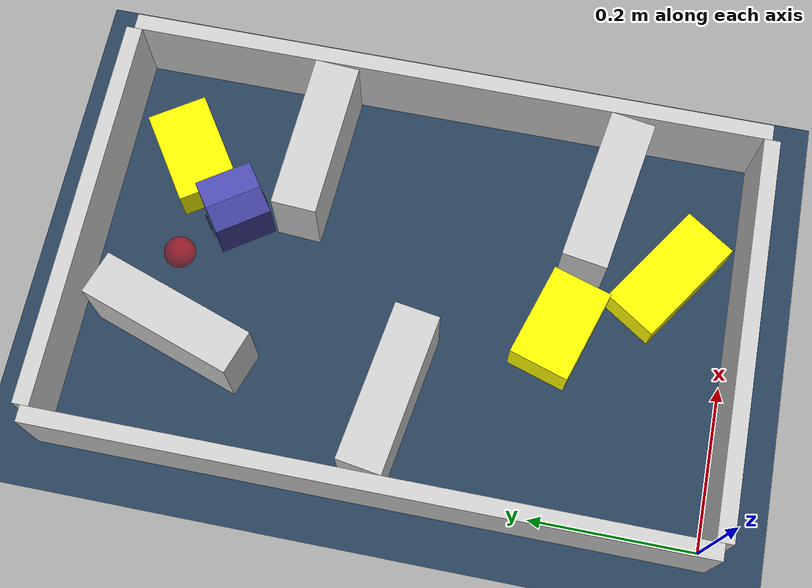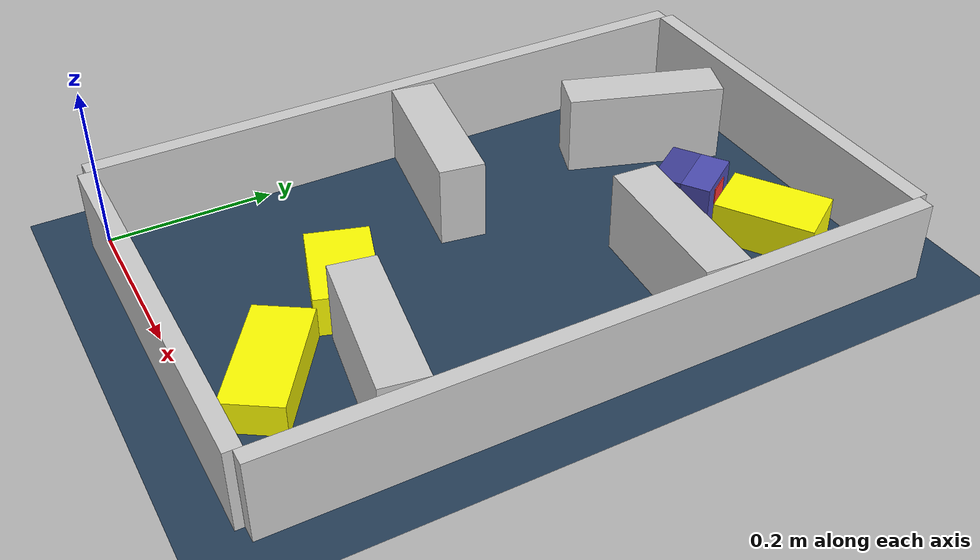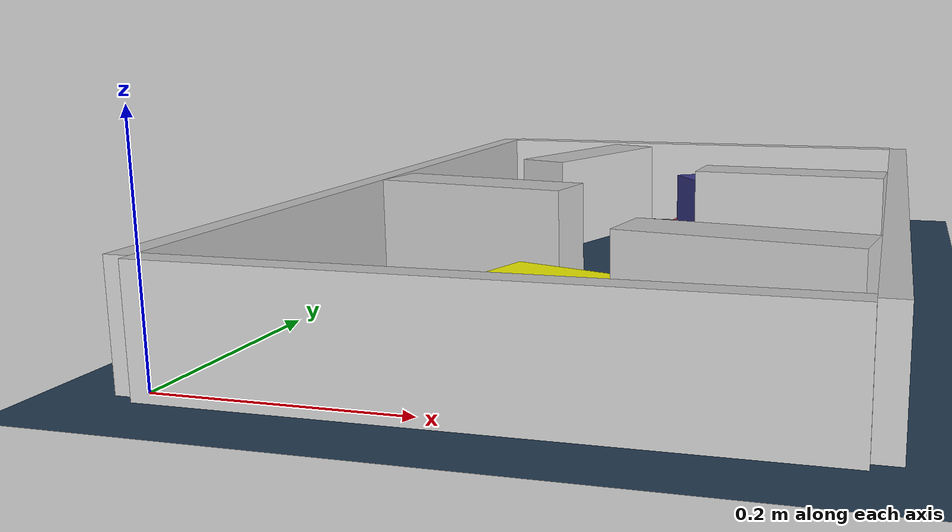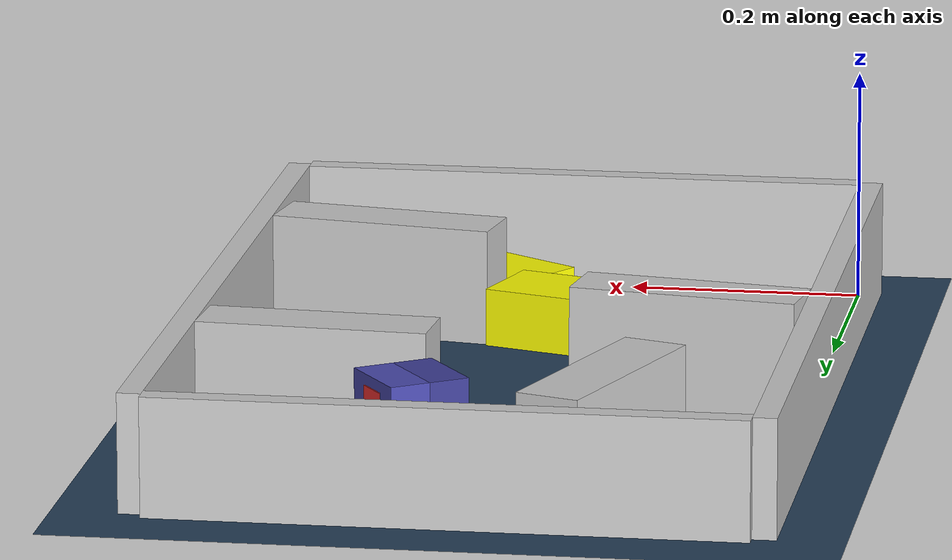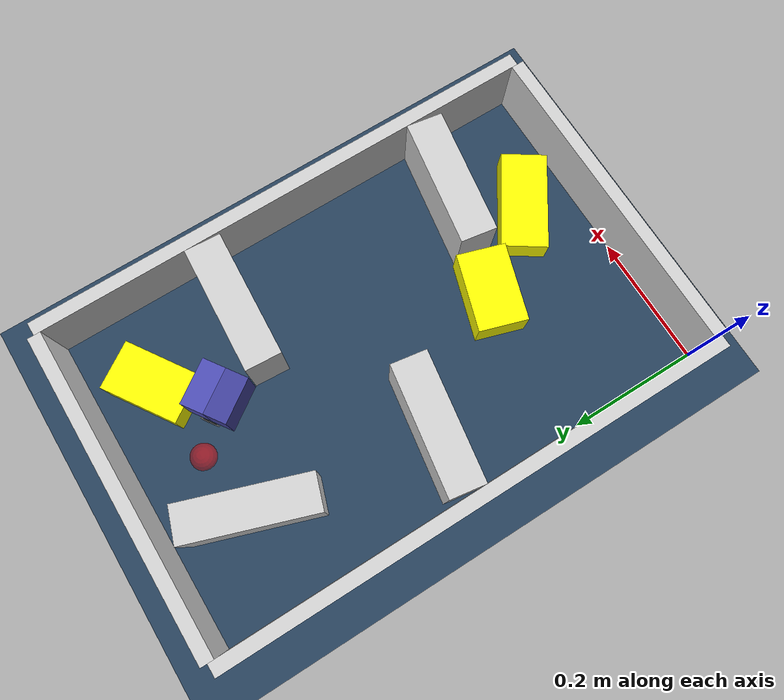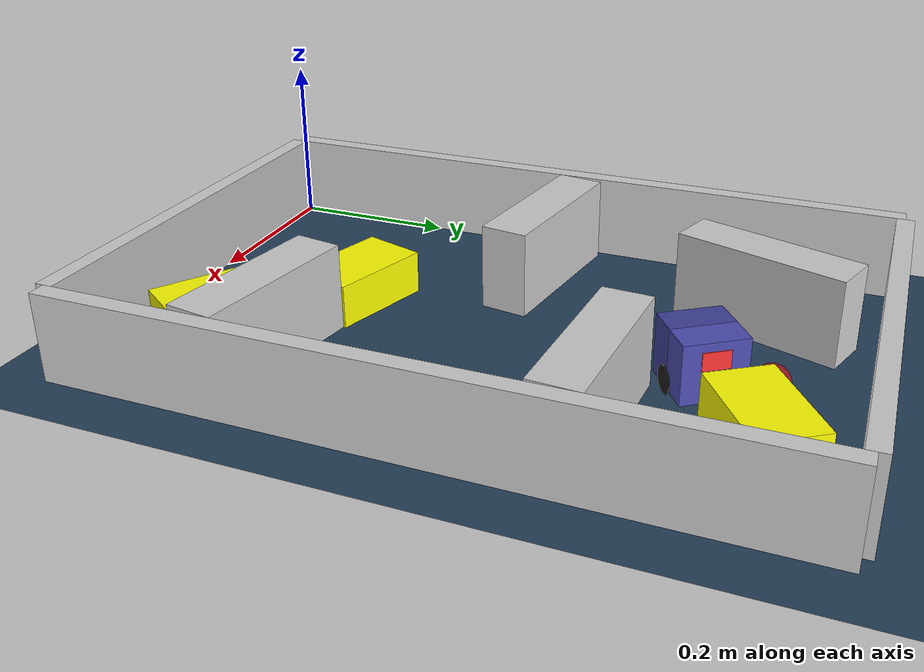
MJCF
<?xml version='1.0' encoding='utf-8'?>
<mujoco model="real_buildable">
  <compiler angle="degree" />
  <option timestep="0.002" integrator="implicitfast" iterations="100" cone="elliptic" />
  <default>
    <geom density="1" />
  </default>
  <asset>
    <texture builtin="gradient" height="3072" rgb1="0.3 0.5 0.7" rgb2="0 0 0" type="skybox" width="512" />
    <texture builtin="checker" height="300" mark="edge" markrgb="0.8 0.8 0.8" name="groundplane" rgb1="0.2 0.3 0.4" rgb2="0.1 0.2 0.3" type="2d" width="300" />
    <material name="groundplane" reflectance="0.2" texrepeat="5 5" texture="groundplane" texuniform="true" />
  </asset>
  <worldbody>
    <light dir="0 0 -1" directional="true" pos="0 0 1.5" />
    <geom name="floor" type="plane" condim="4" friction="0.5 0.005 0.001" material="groundplane" size="0 0 0.05" />
    <body name="walls">
      <geom name="wall_boundary_left" type="box" condim="4" friction="1.0 0.005 0.0001" rgba="0.8 0.8 0.8 1" pos="-0.010000 0.387500 0.050000" euler="0 0 0.000000" size="0.010000 0.397500 0.050000" />
      <geom name="wall_boundary_right" type="box" condim="4" friction="1.0 0.005 0.0001" rgba="0.8 0.8 0.8 1" pos="0.500000 0.387500 0.050000" euler="0 0 0.000000" size="0.010000 0.397500 0.050000" />
      <geom name="wall_boundary_bottom" type="box" condim="4" friction="1.0 0.005 0.0001" rgba="0.8 0.8 0.8 1" pos="0.245000 -0.010000 0.050000" euler="0 0 0.000000" size="0.245000 0.010000 0.050000" />
      <geom name="wall_boundary_top" type="box" condim="4" friction="1.0 0.005 0.0001" rgba="0.8 0.8 0.8 1" pos="0.245000 0.785000 0.050000" euler="0 0 0.000000" size="0.245000 0.010000 0.050000" />
      <geom name="wall_inner_1" type="box" condim="4" friction="1.0 0.005 0.0001" rgba="0.8 0.8 0.8 1" pos="0.389365 0.173598 0.050000" euler="0 0 -9.160550" size="0.097500 0.027500 0.050000" />
      <geom name="wall_inner_2" type="box" condim="4" friction="1.0 0.005 0.0001" rgba="0.8 0.8 0.8 1" pos="0.100574 0.383341 0.050000" euler="0 0 -8.868566" size="0.097500 0.027500 0.050000" />
      <geom name="wall_inner_3" type="box" condim="4" friction="1.0 0.005 0.0001" rgba="0.8 0.8 0.8 1" pos="0.391000 0.532000 0.050000" euler="0 0 176.500000" size="0.097500 0.027500 0.050000" />
      <geom name="wall_inner_4" type="box" condim="4" friction="1.0 0.005 0.0001" rgba="0.8 0.8 0.8 1" pos="0.138000 0.653000 0.050000" euler="0 0 71.100000" size="0.097500 0.027500 0.050000" />
    </body>
    <body name="car" pos="0.29943653941368281 0.61496953049820857 0.01" quat="0.95480698739372416 0 0 0.29722654125114839">
      <freejoint name="car_freejoint" />
      <inertial pos="0 0 0.0375" mass="0.35" diaginertia="0.000266 0.000266 0.000286" />
      <geom name="front_chassis_collision" type="box" pos="0.0175 0 0.0375" size="0.0175 0.035 0.0325" rgba="0.3 0.3 0.7 1" />
      <geom name="rear_chassis_collision" type="box" pos="-0.0175 0 0.0375" size="0.0175 0.035 0.0325" rgba="0.25 0.25 0.6 1" />
      <geom name="front_marker" type="box" pos="0.034 0 0.0505" size="0.002 0.015 0.01" rgba="1 0.2 0.2 1" contype="0" conaffinity="0" />
      <body name="rear_support_body" pos="-0.03 0 0.0025">
        <joint name="rear_caster_joint" type="ball" damping="0.0001" />
        <inertial pos="0 0 0" mass="0.025" diaginertia="0.000001 0.000001 0.000001" />
        <geom name="rear_support" type="sphere" pos="0 0 0" size="0.0025" friction="0 0 0" rgba="0.7 0.1 0.1 1" />
      </body>
      <body name="front_support_body" pos="0.03 0 0.0025">
        <joint name="front_caster_joint" type="ball" damping="0.0001" />
        <inertial pos="0 0 0" mass="0.025" diaginertia="0.000001 0.000001 0.000001" />
        <geom name="front_support" type="sphere" pos="0 0 0" size="0.0025" friction="0 0 0" rgba="0.1 0.7 0.1 1" />
      </body>
      <body name="left_wheel" pos="0 0.0375 0.015">
        <inertial pos="0 0 0" mass="0.05" diaginertia="0.000003 0.000006 0.000003" />
        <joint name="left_wheel_joint" type="hinge" axis="0 1 0" damping="0.01" armature="0.0001" />
        <geom name="left_wheel_collision" type="cylinder" size="0.015 0.0005" euler="90 0 0" rgba="0.1 0.1 0.1 1" />
      </body>
      <body name="right_wheel" pos="0 -0.0375 0.015">
        <inertial pos="0 0 0" mass="0.05" diaginertia="0.000003 0.000006 0.000003" />
        <joint name="right_wheel_joint" type="hinge" axis="0 1 0" damping="0.01" armature="0.0001" />
        <geom name="right_wheel_collision" type="cylinder" size="0.015 0.0005" euler="90 0 0" rgba="0.1 0.1 0.1 1" />
      </body>
    </body>
    <body name="obstacle_0_movable">
      <geom name="obstacle_0_movable" condim="4" pos="0.22991541416880551 0.20138489691236358 0.025000000000000001" friction="1 0.005 0.0001" rgba="1 1 0 1" size="0.037500 0.060000 0.025000" type="box" mass="0.1" quat="0.80616908566649692 0 0 0.59168522485832309" />
      <joint type="free" />
    </body>
    <body name="obstacle_1_movable">
      <geom name="obstacle_1_movable" condim="4" pos="0.3665814850695317 0.68710121227287524 0.025000000000000001" friction="1 0.005 0.0001" rgba="1 1 0 1" size="0.037500 0.060000 0.025000" type="box" mass="0.1" quat="0.88120664090960932 0 0 -0.47273127251833352" />
      <joint type="free" />
    </body>
    <body name="obstacle_2_movable">
      <geom name="obstacle_2_movable" condim="4" pos="0.32116772915314051 0.080186018500188957 0.02" friction="1 0.005 0.0001" rgba="1 1 0 1" size="0.035000 0.075000 0.020000" type="box" mass="0.1" quat="0.88189959471020885 0 0 0.47143727562632276" />
      <joint type="free" />
    </body>
    <site name="goal" type="sphere" pos="0.245000 0.680000 0.0" size="0.02" rgba="1 0 0 0.5" />
  </worldbody>
  <actuator>
    <velocity name="left_wheel_drive" joint="left_wheel_joint" ctrlrange="-25 25" kv="0.75" forcerange="-0.5 0.5" />
    <velocity name="right_wheel_drive" joint="right_wheel_joint" ctrlrange="-25 25" kv="0.75" forcerange="-0.5 0.5" />
  </actuator>
</mujoco>
